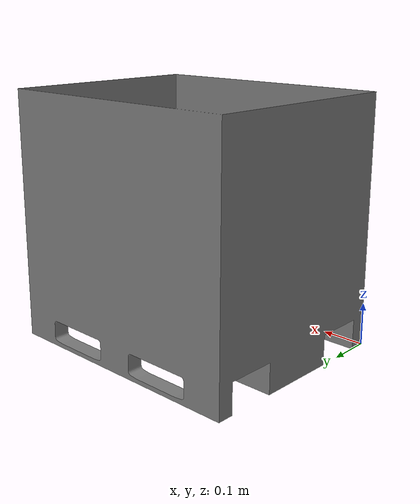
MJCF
<mujoco model="stiwa_box">
    <compiler convexhull="true" angle="radian" meshdir="environment_parts/" />
    <default>
      <default class="visual_box">
        <geom group="0" contype="0" conaffinity="0"/>
      </default>
    </default>
    <asset>
         <mesh name="Kiste" file="Stiwa_box/assets_box/Kiste_bin.stl" scale="0.05 0.05 0.05" />
    </asset>
  <worldbody>
    <body name="Kiste" pos="0 0 0">
        <site name="gripping_point" pos="0.3 0.25 0.2" quat="0 -1 0 0"/>
        <body name="measure_Kiste1" pos="0.6 0 0"/>
        <body name="measure_Kiste2" pos="0.6 0.5 0"/>
        <body name="measure_Kiste3" pos="0.6 0 0.5"/>
            <geom pos="0 0 0" type="mesh" class="visual_box" contype="0" conaffinity="0" rgba="0.5 0.5 0.5 1" name="Kiste" mesh="Kiste"/>
            <!-- Separate collision boxes for each wall and the ground, placed on the outside and thicker -->
            <geom pos="0.3 0.25 0.025" type="box" group="3" contype="1" conaffinity="1" size="0.31 0.26 0.025" name="ground"/>
            <geom pos="0.3 -0.03 0.3" type="box" group="3" contype="1" conaffinity="1" size="0.31 0.03 0.3" name="wall1"/>
            <geom pos="0.3 0.53 0.3" type="box" group="3" contype="1" conaffinity="1" size="0.31 0.03 0.3" name="wall2"/>
            <geom pos="-0.03 0.25 0.3" type="box" group="3" contype="1" conaffinity="1" size="0.03 0.3 0.3" name="wall3"/>
            <geom pos="0.63 0.25 0.3" type="box" group="3" contype="1" conaffinity="1" size="0.03 0.3 0.3" name="wall4"/>
    </body>
  </worldbody>
</mujoco>
